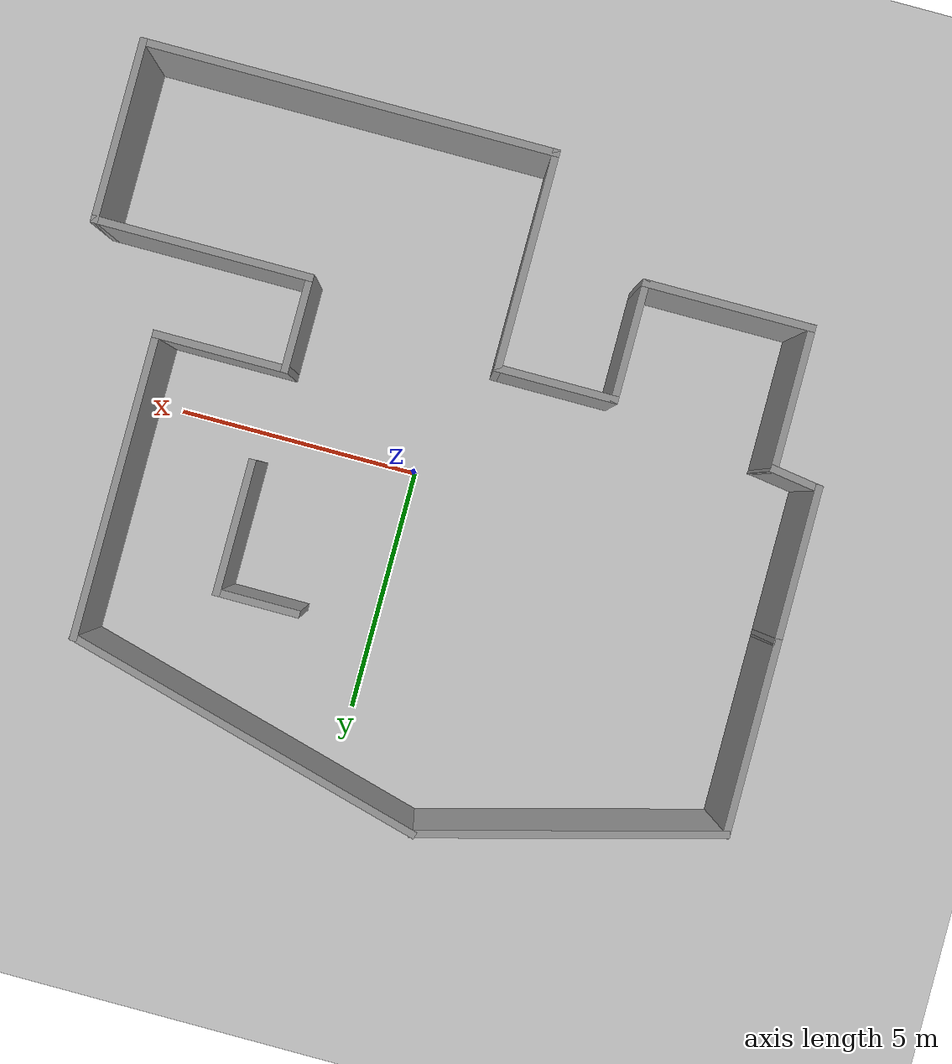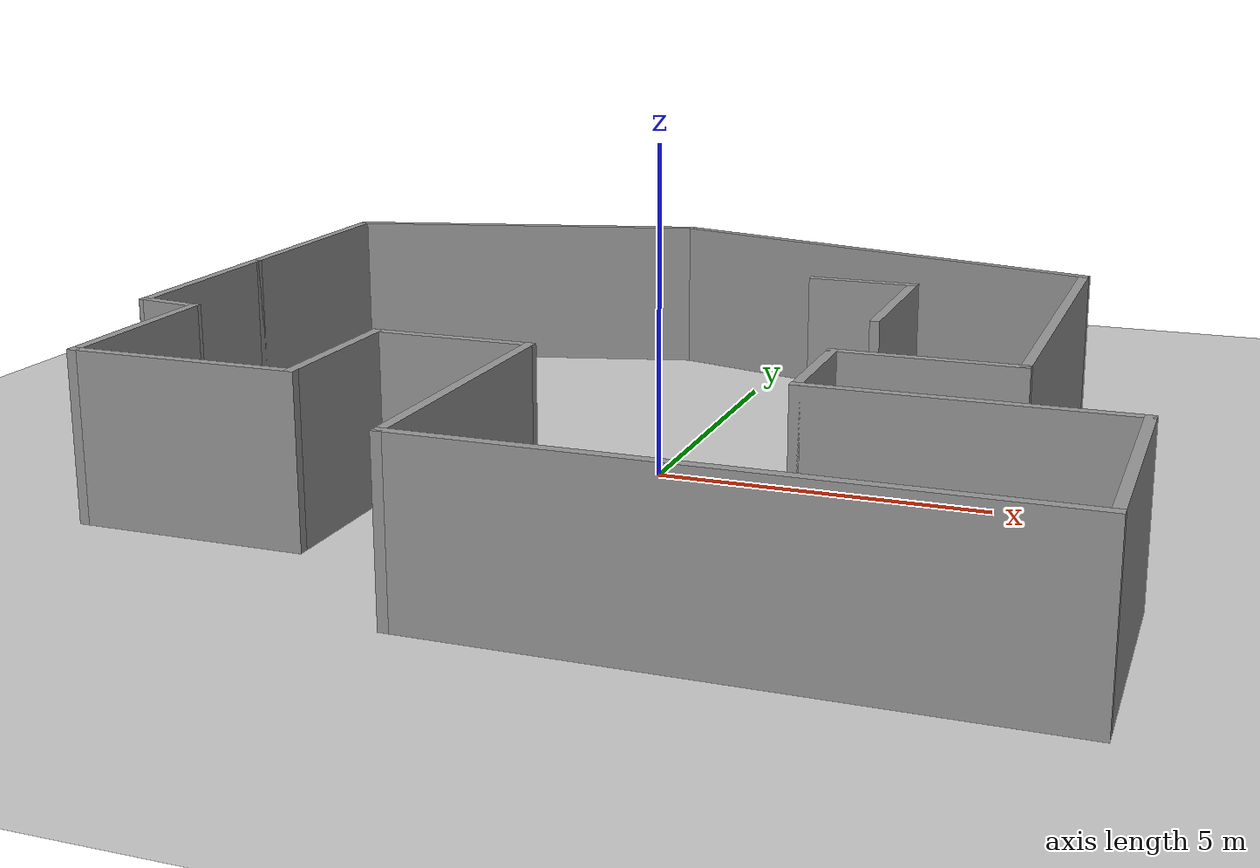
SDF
<sdf version="1.7">
 <world name="default">
  <light name="sun" type="directional">
   <pose>0 0 10 0 -0 0</pose>
   <diffuse>0.8 0.8 0.8 1</diffuse>
   <specular>0.2 0.2 0.2 1</specular>
   <attenuation>
    <range>1000</range>
    <constant>0.9</constant>
    <linear>0.01</linear>
    <quadratic>0.001</quadratic>
   </attenuation>
   <direction>-0.5 0.1 -0.9</direction>
   <spot><inner_angle>0</inner_angle><outer_angle>0</outer_angle><falloff>0</falloff></spot>
  </light>
  <model name="ground_plane">
   <static>1</static>
   <link name="link">
    <collision name="collision">
     <geometry><plane><normal>0 0 1</normal><size>100 100</size></plane></geometry>
     <surface>
      <contact><collide_bitmask>65535</collide_bitmask></contact>
      <friction><ode><mu>100</mu><mu2>50</mu2></ode></friction>
     </surface>
    </collision>
    <visual name="visual">
     <cast_shadows>0</cast_shadows>
     <geometry><plane><normal>0 0 1</normal><size>100 100</size></plane></geometry>
     <material>
      <script><uri>file://media/materials/scripts/gazebo.material</uri><name>Gazebo/Grey</name></script>
     </material>
    </visual>
   </link>
  </model>
  <gravity>0 0 -9.8</gravity>
  <magnetic_field>6e-06 2.3e-05 -4.2e-05</magnetic_field>
  <atmosphere type="adiabatic"/>
  <physics type="ode">
   <max_step_size>0.001</max_step_size>
   <real_time_factor>1</real_time_factor>
   <real_time_update_rate>1000</real_time_update_rate>
  </physics>
  <scene><ambient>0.4 0.4 0.4 1</ambient><background>0.7 0.7 0.7 1</background><shadows>1</shadows></scene>
  <spherical_coordinates>
   <surface_model>EARTH_WGS84</surface_model>
   <latitude_deg>0</latitude_deg>
   <longitude_deg>0</longitude_deg>
   <elevation>0</elevation>
   <heading_deg>0</heading_deg>
  </spherical_coordinates>
  <model name="model11_1_2">
   <pose>0.038283 0.036609 0 0 -0 0</pose>
   <link name="Wall_10">
    <collision name="Wall_10_Collision">
     <geometry><box><size>3.75 0.15 2.5</size></box></geometry>
     <pose>0 0 1.25 0 -0 0</pose>
    </collision>
    <visual name="Wall_10_Visual">
     <pose>0 0 1.25 0 -0 0</pose>
     <geometry><box><size>3.75 0.15 2.5</size></box></geometry>
     <material>
      <script><uri>file://media/materials/scripts/gazebo.material</uri><name>Gazebo/Grey</name></script>
      <ambient>1 1 1 1</ambient>
     </material>
     <meta><layer>0</layer></meta>
    </visual>
    <pose>7.25609 -4.96694 0 0 -0 -1.5708</pose>
   </link>
   <link name="Wall_11">
    <collision name="Wall_11_Collision">
     <geometry><box><size>8.5 0.15 2.5</size></box></geometry>
     <pose>0 0 1.25 0 -0 0</pose>
    </collision>
    <visual name="Wall_11_Visual">
     <pose>0 0 1.25 0 -0 0</pose>
     <geometry><box><size>8.5 0.15 2.5</size></box></geometry>
     <material>
      <script><uri>file://media/materials/scripts/gazebo.material</uri><name>Gazebo/Grey</name></script>
      <ambient>1 1 1 1</ambient>
     </material>
     <meta><layer>0</layer></meta>
    </visual>
    <pose>3.08109 -6.76694 0 0 -0 3.14159</pose>
   </link>
   <link name="Wall_12">
    <collision name="Wall_12_Collision">
     <geometry><box><size>4.5 0.15 2.5</size></box></geometry>
     <pose>0 0 1.25 0 -0 0</pose>
    </collision>
    <visual name="Wall_12_Visual">
     <pose>0 0 1.25 0 -0 0</pose>
     <geometry><box><size>4.5 0.15 2.5</size></box></geometry>
     <material>
      <script><uri>file://media/materials/scripts/gazebo.material</uri><name>Gazebo/Grey</name></script>
      <ambient>1 1 1 1</ambient>
     </material>
     <meta><layer>0</layer></meta>
    </visual>
    <pose>-1.09391 -4.59194 0 0 -0 1.5708</pose>
   </link>
   <link name="Wall_13">
    <collision name="Wall_13_Collision">
     <geometry><box><size>2.5 0.15 2.5</size></box></geometry>
     <pose>0 0 1.25 0 -0 0</pose>
    </collision>
    <visual name="Wall_13_Visual">
     <pose>0 0 1.25 0 -0 0</pose>
     <geometry><box><size>2.5 0.15 2.5</size></box></geometry>
     <material>
      <script><uri>file://media/materials/scripts/gazebo.material</uri><name>Gazebo/Grey</name></script>
      <ambient>1 1 1 1</ambient>
     </material>
     <meta><layer>0</layer></meta>
    </visual>
    <pose>-2.26891 -2.41694 0 0 -0 3.14159</pose>
   </link>
   <link name="Wall_14">
    <collision name="Wall_14_Collision">
     <geometry><box><size>2.5 0.15 2.5</size></box></geometry>
     <pose>0 0 1.25 0 -0 0</pose>
    </collision>
    <visual name="Wall_14_Visual">
     <pose>0 0 1.25 0 -0 0</pose>
     <geometry><box><size>2.5 0.15 2.5</size></box></geometry>
     <material>
      <script><uri>file://media/materials/scripts/gazebo.material</uri><name>Gazebo/Grey</name></script>
      <ambient>1 1 1 1</ambient>
     </material>
     <meta><layer>0</layer></meta>
    </visual>
    <pose>-3.44391 -3.59194 0 0 -0 -1.5708</pose>
   </link>
   <link name="Wall_15">
    <collision name="Wall_15_Collision">
     <geometry><box><size>3.5 0.15 2.5</size></box></geometry>
     <pose>0 0 1.25 0 -0 0</pose>
    </collision>
    <visual name="Wall_15_Visual">
     <pose>0 0 1.25 0 -0 0</pose>
     <geometry><box><size>3.5 0.15 2.5</size></box></geometry>
     <material>
      <script><uri>file://media/materials/scripts/gazebo.material</uri><name>Gazebo/Grey</name></script>
      <ambient>1 1 1 1</ambient>
     </material>
     <meta><layer>0</layer></meta>
    </visual>
    <pose>-5.11891 -4.76694 0 0 -0 3.14159</pose>
   </link>
   <link name="Wall_16">
    <collision name="Wall_16_Collision">
     <geometry><box><size>3 0.15 2.5</size></box></geometry>
     <pose>0 0 1.25 0 -0 0</pose>
    </collision>
    <visual name="Wall_16_Visual">
     <pose>0 0 1.25 0 -0 0</pose>
     <geometry><box><size>3 0.15 2.5</size></box></geometry>
     <material>
      <script><uri>file://media/materials/scripts/gazebo.material</uri><name>Gazebo/Grey</name></script>
      <ambient>1 1 1 1</ambient>
     </material>
     <meta><layer>0</layer></meta>
    </visual>
    <pose>-6.79391 -3.34194 0 0 -0 1.5708</pose>
   </link>
   <link name="Wall_21">
    <collision name="Wall_21_Collision">
     <geometry><box><size>1.75 0.15 2.5</size></box></geometry>
     <pose>0 0 1.25 0 -0 0</pose>
    </collision>
    <visual name="Wall_21_Visual">
     <pose>0 0 1.25 0 -0 0</pose>
     <geometry><box><size>1.75 0.15 2.5</size></box></geometry>
     <material>
      <script><uri>file://media/materials/scripts/gazebo.material</uri><name>Gazebo/Grey</name></script>
      <ambient>1 1 1 1</ambient>
     </material>
     <meta><layer>0</layer></meta>
    </visual>
    <pose>2.25258 3.21712 0 0 -0 0</pose>
   </link>
   <link name="Wall_22">
    <collision name="Wall_22_Collision">
     <geometry><box><size>2.75 0.15 2.5</size></box></geometry>
     <pose>0 0 1.25 0 -0 0</pose>
    </collision>
    <visual name="Wall_22_Visual">
     <pose>0 0 1.25 0 -0 0</pose>
     <geometry><box><size>2.75 0.15 2.5</size></box></geometry>
     <material>
      <script><uri>file://media/materials/scripts/gazebo.material</uri><name>Gazebo/Grey</name></script>
      <ambient>1 1 1 1</ambient>
     </material>
     <meta><layer>0</layer></meta>
    </visual>
    <pose>3.05258 1.91712 0 0 -0 -1.5708</pose>
   </link>
   <link name="Wall_28">
    <collision name="Wall_28_Collision">
     <geometry><box><size>3.25 0.15 2.5</size></box></geometry>
     <pose>0 0 1.25 0 -0 0</pose>
    </collision>
    <visual name="Wall_28_Visual">
     <pose>0 0 1.25 0 -0 0</pose>
     <geometry><box><size>3.25 0.15 2.5</size></box></geometry>
     <material>
      <script><uri>file://media/materials/scripts/gazebo.material</uri><name>Gazebo/Grey</name></script>
      <ambient>1 1 1 1</ambient>
     </material>
     <meta><layer>0</layer></meta>
    </visual>
    <pose>-7.7271 -0.228712 0 0 -0 -1.5708</pose>
   </link>
   <link name="Wall_3">
    <collision name="Wall_3_Collision">
     <geometry><box><size>4 0.15 2.5</size></box></geometry>
     <pose>0 0 1.25 0 -0 0</pose>
    </collision>
    <visual name="Wall_3_Visual">
     <pose>0 0 1.25 0 -0 0</pose>
     <geometry><box><size>4 0.15 2.5</size></box></geometry>
     <material>
      <script><uri>file://media/materials/scripts/gazebo.material</uri><name>Gazebo/Grey</name></script>
      <ambient>1 1 1 1</ambient>
     </material>
     <meta><layer>0</layer></meta>
    </visual>
    <pose>-7.7271 3.24629 0 0 -0 1.5708</pose>
   </link>
   <link name="Wall_30">
    <collision name="Wall_30_Collision">
     <geometry><box><size>1.09337 0.15 2.5</size></box></geometry>
     <pose>0 0 1.25 0 -0 0</pose>
    </collision>
    <visual name="Wall_30_Visual">
     <pose>0 0 1.25 0 -0 0</pose>
     <geometry><box><size>1.09337 0.15 2.5</size></box></geometry>
     <material>
      <script><uri>file://media/materials/scripts/gazebo.material</uri><name>Gazebo/Grey</name></script>
      <ambient>1 1 1 1</ambient>
     </material>
     <meta><layer>0</layer></meta>
    </visual>
    <pose>-7.26051 -1.84783 0 0 -0 2.99454</pose>
   </link>
   <link name="Wall_4">
    <collision name="Wall_4_Collision">
     <geometry><box><size>6.25 0.15 2.5</size></box></geometry>
     <pose>0 0 1.25 0 -0 0</pose>
    </collision>
    <visual name="Wall_4_Visual">
     <pose>0 0 1.25 0 -0 0</pose>
     <geometry><box><size>6.25 0.15 2.5</size></box></geometry>
     <material>
      <script><uri>file://media/materials/scripts/gazebo.material</uri><name>Gazebo/Grey</name></script>
      <ambient>1 1 1 1</ambient>
     </material>
     <meta><layer>0</layer></meta>
    </visual>
    <pose>-4.78102 5.96069 0 0 -0 0.261799</pose>
   </link>
   <link name="Wall_5">
    <collision name="Wall_5_Collision">
     <geometry><box><size>7.75 0.15 2.5</size></box></geometry>
     <pose>0 0 1.25 0 -0 0</pose>
    </collision>
    <visual name="Wall_5_Visual">
     <pose>0 0 1.25 0 -0 0</pose>
     <geometry><box><size>7.75 0.15 2.5</size></box></geometry>
     <material>
      <script><uri>file://media/materials/scripts/gazebo.material</uri><name>Gazebo/Grey</name></script>
      <ambient>1 1 1 1</ambient>
     </material>
     <meta><layer>0</layer></meta>
    </visual>
    <pose>1.83557 5.76657 0 0 -0 -0.261799</pose>
   </link>
   <link name="Wall_6">
    <collision name="Wall_6_Collision">
     <geometry><box><size>6.25 0.15 2.5</size></box></geometry>
     <pose>0 0 1.25 0 -0 0</pose>
    </collision>
    <visual name="Wall_6_Visual">
     <pose>0 0 1.25 0 -0 0</pose>
     <geometry><box><size>6.25 0.15 2.5</size></box></geometry>
     <material>
      <script><uri>file://media/materials/scripts/gazebo.material</uri><name>Gazebo/Grey</name></script>
      <ambient>1 1 1 1</ambient>
     </material>
     <meta><layer>0</layer></meta>
    </visual>
    <pose>5.50609 1.73306 0 0 -0 -1.5708</pose>
   </link>
   <link name="Wall_7">
    <collision name="Wall_7_Collision">
     <geometry><box><size>2.75 0.15 2.5</size></box></geometry>
     <pose>0 0 1.25 0 -0 0</pose>
    </collision>
    <visual name="Wall_7_Visual">
     <pose>0 0 1.25 0 -0 0</pose>
     <geometry><box><size>2.75 0.15 2.5</size></box></geometry>
     <material>
      <script><uri>file://media/materials/scripts/gazebo.material</uri><name>Gazebo/Grey</name></script>
      <ambient>1 1 1 1</ambient>
     </material>
     <meta><layer>0</layer></meta>
    </visual>
    <pose>4.20609 -1.31694 0 0 -0 3.14159</pose>
   </link>
   <link name="Wall_8">
    <collision name="Wall_8_Collision">
     <geometry><box><size>2 0.15 2.5</size></box></geometry>
     <pose>0 0 1.25 0 -0 0</pose>
    </collision>
    <visual name="Wall_8_Visual">
     <pose>0 0 1.25 0 -0 0</pose>
     <geometry><box><size>2 0.15 2.5</size></box></geometry>
     <material>
      <script><uri>file://media/materials/scripts/gazebo.material</uri><name>Gazebo/Grey</name></script>
      <ambient>1 1 1 1</ambient>
     </material>
     <meta><layer>0</layer></meta>
    </visual>
    <pose>2.90609 -2.24194 0 0 -0 -1.5708</pose>
   </link>
   <link name="Wall_9">
    <collision name="Wall_9_Collision">
     <geometry><box><size>4.5 0.15 2.5</size></box></geometry>
     <pose>0 0 1.25 0 -0 0</pose>
    </collision>
    <visual name="Wall_9_Visual">
     <pose>0 0 1.25 0 -0 0</pose>
     <geometry><box><size>4.5 0.15 2.5</size></box></geometry>
     <material>
      <script><uri>file://media/materials/scripts/gazebo.material</uri><name>Gazebo/Grey</name></script>
      <ambient>1 1 1 1</ambient>
     </material>
     <meta><layer>0</layer></meta>
    </visual>
    <pose>5.08109 -3.16694 0 0 -0 0</pose>
   </link>
   <static>1</static>
  </model>
 </world>
</sdf>
